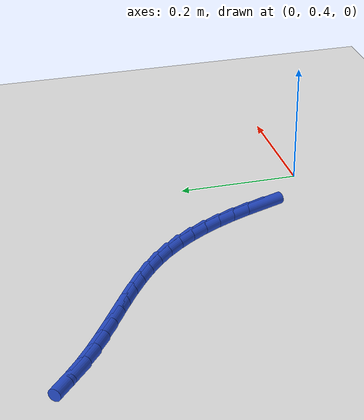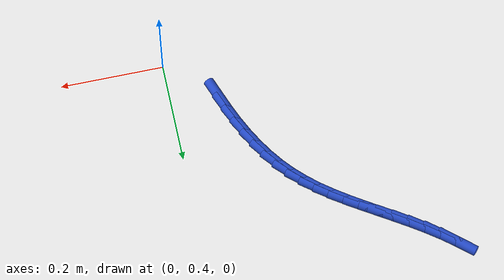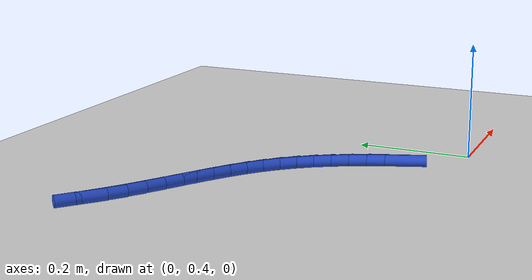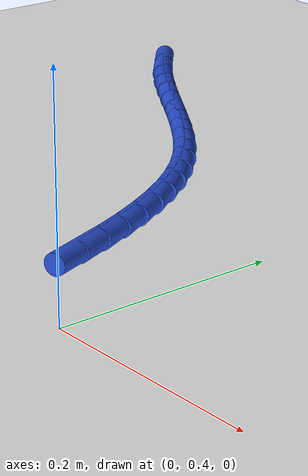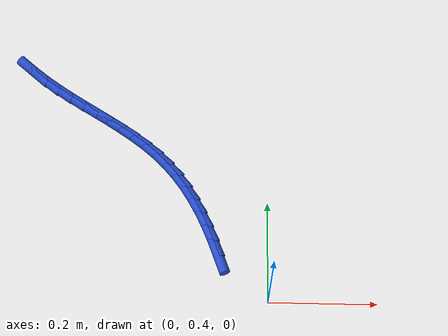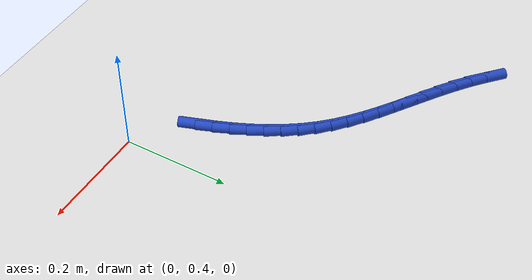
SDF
<sdf version="1.6">
 <world name="default">
  <model name="ground_plane">
   <static>1</static>
   <link name="link">
    <collision name="collision">
     <geometry><plane><normal>0 0 1</normal><size>100 100</size></plane></geometry>
     <surface><friction><ode><mu>100</mu><mu2>50</mu2></ode></friction></surface>
    </collision>
    <visual name="visual">
     <cast_shadows>0</cast_shadows>
     <geometry><plane><normal>0 0 1</normal><size>100 100</size></plane></geometry>
     <material>
      <script><uri>file://media/materials/scripts/gazebo.material</uri><name>Gazebo/WhiteGlow</name></script>
     </material>
    </visual>
   </link>
  </model>
  <model name="line">
   <link name="link_16">
    <pose>-0.09334408990971652 0.4908720359513756 0.01 0 1.57 -1.2260900123261078</pose>
    <collision name="collision">
     <geometry><cylinder><radius>0.01</radius><length>0.08</length></cylinder></geometry>
    </collision>
    <visual name="visual">
     <material>
      <script><name>Gazebo/Blue</name><uri>file://media/materials/scripts/gazebo.material</uri></script>
     </material>
     <geometry><cylinder><radius>0.01</radius><length>0.08</length></cylinder></geometry>
    </visual>
   </link>
   <link name="link_17">
    <pose>-0.1039551715128186 0.5204259942088669 0.01 0 1.57 -1.1849804950862828</pose>
    <collision name="collision">
     <geometry><cylinder><radius>0.01</radius><length>0.08</length></cylinder></geometry>
    </collision>
    <visual name="visual">
     <material>
      <script><name>Gazebo/Blue</name><uri>file://media/materials/scripts/gazebo.material</uri></script>
     </material>
     <geometry><cylinder><radius>0.01</radius><length>0.08</length></cylinder></geometry>
    </visual>
   </link>
   <link name="link_18">
    <pose>-0.11564308746636379 0.5492017643487167 0.01 0 1.57 -1.1374946750342765</pose>
    <collision name="collision">
     <geometry><cylinder><radius>0.01</radius><length>0.08</length></cylinder></geometry>
    </collision>
    <visual name="visual">
     <material>
      <script><name>Gazebo/Blue</name><uri>file://media/materials/scripts/gazebo.material</uri></script>
     </material>
     <geometry><cylinder><radius>0.01</radius><length>0.08</length></cylinder></geometry>
    </visual>
   </link>
   <link name="link_19">
    <pose>-0.12853098222601106 0.577060062078668 0.01 0 1.57 -1.0832571278311915</pose>
    <collision name="collision">
     <geometry><cylinder><radius>0.01</radius><length>0.08</length></cylinder></geometry>
    </collision>
    <visual name="visual">
     <material>
      <script><name>Gazebo/Blue</name><uri>file://media/materials/scripts/gazebo.material</uri></script>
     </material>
     <geometry><cylinder><radius>0.01</radius><length>0.08</length></cylinder></geometry>
    </visual>
   </link>
   <link name="link_20">
    <pose>-0.14274200024741943 0.6038616031064638 0.01 0 1.57 -1.021977401247454</pose>
    <collision name="collision">
     <geometry><cylinder><radius>0.01</radius><length>0.08</length></cylinder></geometry>
    </collision>
    <visual name="visual">
     <material>
      <script><name>Gazebo/Blue</name><uri>file://media/materials/scripts/gazebo.material</uri></script>
     </material>
     <geometry><cylinder><radius>0.01</radius><length>0.08</length></cylinder></geometry>
    </visual>
   </link>
   <link name="link_21">
    <pose>-0.15839928598624795 0.6294671031398471 0.01 0 1.57 -0.9535308733855988</pose>
    <collision name="collision">
     <geometry><cylinder><radius>0.01</radius><length>0.08</length></cylinder></geometry>
    </collision>
    <visual name="visual">
     <material>
      <script><name>Gazebo/Blue</name><uri>file://media/materials/scripts/gazebo.material</uri></script>
     </material>
     <geometry><cylinder><radius>0.01</radius><length>0.08</length></cylinder></geometry>
    </visual>
   </link>
   <link name="link_22">
    <pose>-0.17562598389815565 0.653737277886561 0.01 0 1.57 -0.8780561430552011</pose>
    <collision name="collision">
     <geometry><cylinder><radius>0.01</radius><length>0.08</length></cylinder></geometry>
    </collision>
    <visual name="visual">
     <material>
      <script><name>Gazebo/Blue</name><uri>file://media/materials/scripts/gazebo.material</uri></script>
     </material>
     <geometry><cylinder><radius>0.01</radius><length>0.08</length></cylinder></geometry>
    </visual>
   </link>
   <link name="link_23">
    <pose>-0.19454523843880167 0.6765328430543487 0.01 0 1.57 -0.797303130862807</pose>
    <collision name="collision">
     <geometry><cylinder><radius>0.01</radius><length>0.08</length></cylinder></geometry>
    </collision>
    <visual name="visual">
     <material>
      <script><name>Gazebo/Blue</name><uri>file://media/materials/scripts/gazebo.material</uri></script>
     </material>
     <geometry><cylinder><radius>0.01</radius><length>0.08</length></cylinder></geometry>
    </visual>
   </link>
   <link name="link_24">
    <pose>-0.21525478350491845 0.6977414458844622 0.01 0 1.57 -0.7241617399569318</pose>
    <collision name="collision">
     <geometry><cylinder><radius>0.01</radius><length>0.08</length></cylinder></geometry>
    </collision>
    <visual name="visual">
     <material>
      <script><name>Gazebo/Blue</name><uri>file://media/materials/scripts/gazebo.material</uri></script>
     </material>
     <geometry><cylinder><radius>0.01</radius><length>0.08</length></cylinder></geometry>
    </visual>
   </link>
   <link name="link_25">
    <pose>-0.2376068602889616 0.7175109205353584 0.01 0 1.57 -0.6658429942838564</pose>
    <collision name="collision">
     <geometry><cylinder><radius>0.01</radius><length>0.08</length></cylinder></geometry>
    </collision>
    <visual name="visual">
     <material>
      <script><name>Gazebo/Blue</name><uri>file://media/materials/scripts/gazebo.material</uri></script>
     </material>
     <geometry><cylinder><radius>0.01</radius><length>0.08</length></cylinder></geometry>
    </visual>
   </link>
   <link name="link_26">
    <pose>-0.26131619727023786 0.7361348448405092 0.01 0 1.57 -0.62221585230723</pose>
    <collision name="collision">
     <geometry><cylinder><radius>0.01</radius><length>0.08</length></cylinder></geometry>
    </collision>
    <visual name="visual">
     <material>
      <script><name>Gazebo/Blue</name><uri>file://media/materials/scripts/gazebo.material</uri></script>
     </material>
     <geometry><cylinder><radius>0.01</radius><length>0.08</length></cylinder></geometry>
    </visual>
   </link>
   <link name="link_27">
    <pose>-0.28609600941314794 0.7539084007412504 0.01 0 1.57 -0.5927548116707138</pose>
    <collision name="collision">
     <geometry><cylinder><radius>0.01</radius><length>0.08</length></cylinder></geometry>
    </collision>
    <visual name="visual">
     <material>
      <script><name>Gazebo/Blue</name><uri>file://media/materials/scripts/gazebo.material</uri></script>
     </material>
     <geometry><cylinder><radius>0.01</radius><length>0.08</length></cylinder></geometry>
    </visual>
   </link>
   <link name="link_28">
    <pose>-0.31165951168209255 0.7711267701789181 0.01 0 1.57 -0.5768902801380734</pose>
    <collision name="collision">
     <geometry><cylinder><radius>0.01</radius><length>0.08</length></cylinder></geometry>
    </collision>
    <visual name="visual">
     <material>
      <script><name>Gazebo/Blue</name><uri>file://media/materials/scripts/gazebo.material</uri></script>
     </material>
     <geometry><cylinder><radius>0.01</radius><length>0.08</length></cylinder></geometry>
    </visual>
   </link>
   <link name="link_29">
    <pose>-0.3377199190414727 0.7880851350948477 0.01 0 1.57 -0.5741697424420177</pose>
    <collision name="collision">
     <geometry><cylinder><radius>0.01</radius><length>0.08</length></cylinder></geometry>
    </collision>
    <visual name="visual">
     <material>
      <script><name>Gazebo/Blue</name><uri>file://media/materials/scripts/gazebo.material</uri></script>
     </material>
     <geometry><cylinder><radius>0.01</radius><length>0.08</length></cylinder></geometry>
    </visual>
   </link>
   <link name="link_30">
    <pose>-0.3639904464556889 0.8050786774303752 0.01 0 1.57 -0.5843284876399779</pose>
    <collision name="collision">
     <geometry><cylinder><radius>0.01</radius><length>0.08</length></cylinder></geometry>
    </collision>
    <visual name="visual">
     <material>
      <script><name>Gazebo/Blue</name><uri>file://media/materials/scripts/gazebo.material</uri></script>
     </material>
     <geometry><cylinder><radius>0.01</radius><length>0.08</length></cylinder></geometry>
    </visual>
   </link>
   <link name="link_31">
    <pose>-0.39018430888914224 0.8224025791268366 0.01 0 1.57 -0.607292051179603</pose>
    <collision name="collision">
     <geometry><cylinder><radius>0.01</radius><length>0.08</length></cylinder></geometry>
    </collision>
    <visual name="visual">
     <material>
      <script><name>Gazebo/Blue</name><uri>file://media/materials/scripts/gazebo.material</uri></script>
     </material>
     <geometry><cylinder><radius>0.01</radius><length>0.08</length></cylinder></geometry>
    </visual>
   </link>
   <link name="link_32">
    <pose>-0.4160147213062331 0.8403520221255674 0.01 0 1.57 -0.6431205922775654</pose>
    <collision name="collision">
     <geometry><cylinder><radius>0.01</radius><length>0.08</length></cylinder></geometry>
    </collision>
    <visual name="visual">
     <material>
      <script><name>Gazebo/Blue</name><uri>file://media/materials/scripts/gazebo.material</uri></script>
     </material>
     <geometry><cylinder><radius>0.01</radius><length>0.08</length></cylinder></geometry>
    </visual>
   </link>
   <link name="link_33">
    <pose>-0.44119489867136275 0.8592221883679039 0.01 0 1.57 -0.689900159431687</pose>
    <collision name="collision">
     <geometry><cylinder><radius>0.01</radius><length>0.08</length></cylinder></geometry>
    </collision>
    <visual name="visual">
     <material>
      <script><name>Gazebo/Blue</name><uri>file://media/materials/scripts/gazebo.material</uri></script>
     </material>
     <geometry><cylinder><radius>0.01</radius><length>0.08</length></cylinder></geometry>
    </visual>
   </link>
   <link name="link_34">
    <pose>-0.4654744909637667 0.8792569375158138 0.01 0 1.57 -0.7266518623340765</pose>
    <collision name="collision">
     <geometry><cylinder><radius>0.01</radius><length>0.08</length></cylinder></geometry>
    </collision>
    <visual name="visual">
     <material>
      <script><name>Gazebo/Blue</name><uri>file://media/materials/scripts/gazebo.material</uri></script>
     </material>
     <geometry><cylinder><radius>0.01</radius><length>0.08</length></cylinder></geometry>
    </visual>
   </link>
  </model>
 </world>
</sdf>
